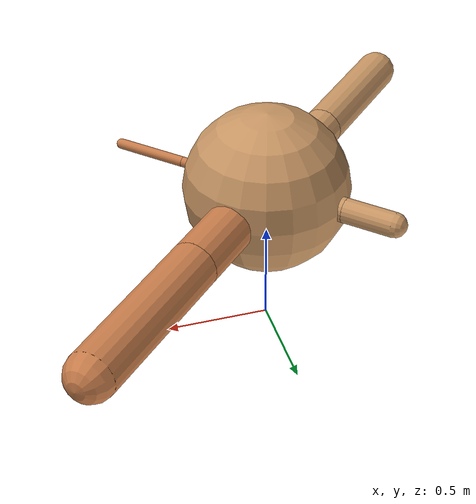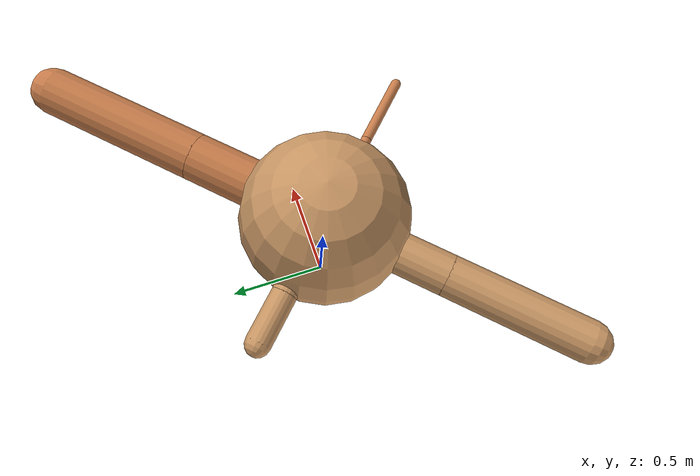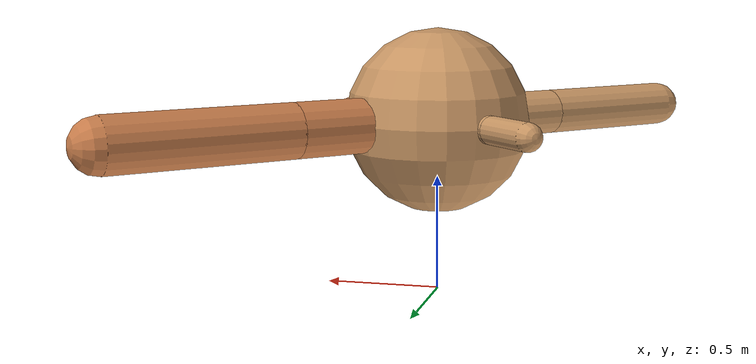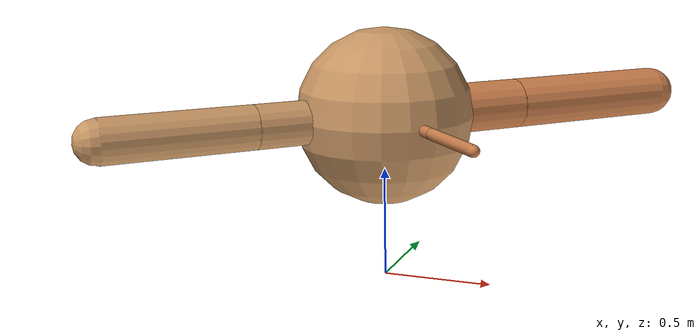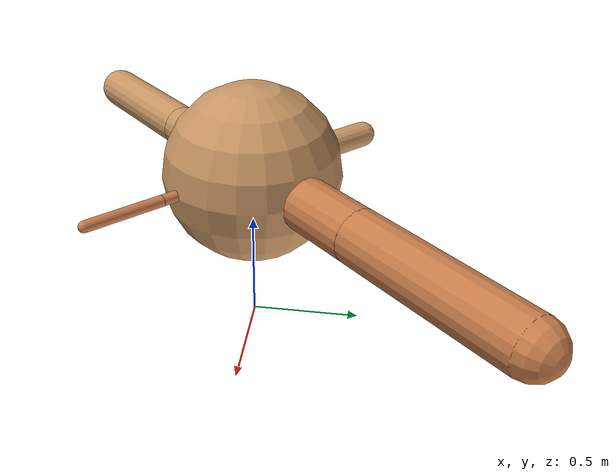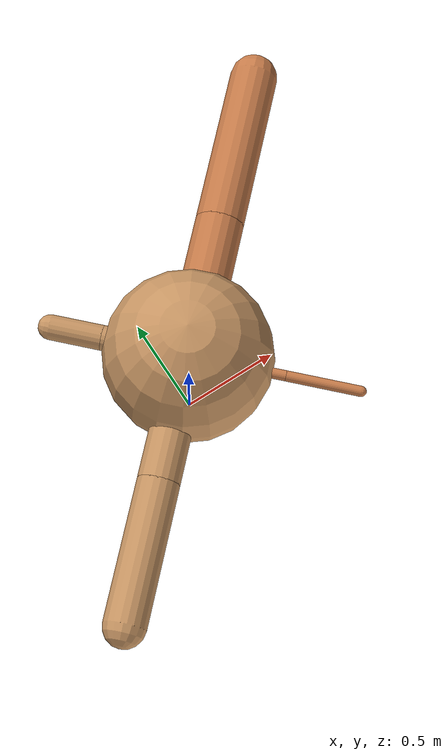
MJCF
<?xml version="1.0" ?>
<mujoco model="ant">

	<compiler angle="degree" coordinate="local" inertiafromgeom="true"/>

	<option integrator="RK4" timestep="0.01"/>

	<custom>

		<numeric data="0.0 0.0 0.55 1.0 0.0 0.0 0.0 0.0 1.0 0.0 -1.0 0.0 -1.0 0.0 1.0" name="init_qpos"/>

	</custom>

	<default>

		<joint armature="1" damping="1" limited="true"/>

		<geom conaffinity="0" condim="3" density="5.0" friction="1.5 0.1 0.1" margin="0.01" rgba="0.8 0.6 0.4 1"/>

	</default>

	<worldbody>

		<body name="torso" pos="0 0 0.75">

			<geom name="torso_geom" pos="0 0 0" size="0.3996975934783642" type="sphere"/>

			<!--joint armature="0" damping="0" limited="false" margin="0.01" name="root" pos="0 0 0" type="free"/-->

			<body name="front_left_leg" pos="0 0 0">

				<geom fromto="0 0 0 0.2 0.2 0" name="aux_1_geom" size="0.11617273427148772" type="capsule" rgba=".8 .5 .3 1"/>

				<body name="aux_1" pos="0.2 0.2 0">

					<joint axis="0 0 1" name="hip_1" pos="0.0 0.0 0.0" range="-40 40" type="hinge"/>

					<geom fromto="0 0 0 0.2852282568502111 0.2852282568502111 0" name="left_leg_geom" size="0.11617273427148772" type="capsule" rgba=".8 .5 .3 1"/>

					<body pos="0.2852282568502111 0.2852282568502111 0" name="front_left_foot">

						<joint axis="-1 1 0" name="ankle_1" pos="0.0 0.0 0.0" range="30 100" type="hinge"/>

						<geom fromto="0 0 0 0.5704565137004222 0.5704565137004222 0" name="left_ankle_geom" size="0.11617273427148772" type="capsule" rgba=".8 .5 .3 1"/>

					</body>

				</body>

			</body>

			<body name="front_right_leg" pos="0 0 0">

				<geom fromto="0 0 0 -0.2 0.2 0" name="aux_2_geom" size="0.059673859772113896" type="capsule"/>

				<body name="aux_2" pos="-0.2 0.2 0">

					<joint axis="0 0 1" name="hip_2" pos="0.0 0.0 0.0" range="-40 40" type="hinge"/>

					<geom fromto="0 0 0 -0.08698204115965723 0.08698204115965723 0" name="right_leg_geom" size="0.059673859772113896" type="capsule"/>

					<body pos="-0.08698204115965723 0.08698204115965723 0" name="front_right_foot">

						<joint axis="1 1 0" name="ankle_2" pos="0.0 0.0 0.0" range="-100 -30" type="hinge"/>

						<geom fromto="0 0 0 -0.17396408231931446 0.17396408231931446 0" name="right_ankle_geom" size="0.059673859772113896" type="capsule"/>

					</body>

				</body>

			</body>

			<body name="left_back_leg" pos="0 0 0">

				<geom fromto="0 0 0 -0.2 -0.2 0" name="aux_3_geom" size="0.09798786572436007" type="capsule"/>

				<body name="aux_3" pos="-0.2 -0.2 0">

					<joint axis="0 0 1" name="hip_3" pos="0.0 0.0 0.0" range="-40 40" type="hinge"/>

					<geom fromto="0 0 0 -0.23012835359321887 -0.23012835359321887 0" name="back_leg_geom" size="0.09798786572436007" type="capsule"/>

					<body pos="-0.23012835359321887 -0.23012835359321887 0" name="left_back_foot">

						<joint axis="-1 1 0" name="ankle_3" pos="0.0 0.0 0.0" range="-100 -30" type="hinge"/>

						<geom fromto="0 0 0 -0.46025670718643774 -0.46025670718643774 0" name="third_ankle_geom" size="0.09798786572436007" type="capsule"/>

					</body>

				</body>

			</body>

			<body name="right_back_leg" pos="0 0 0">

				<geom fromto="0 0 0 0.2 -0.2 0" name="aux_4_geom" size="0.025062995940944334" type="capsule" rgba=".8 .5 .3 1"/>

				<body name="aux_4" pos="0.2 -0.2 0">

					<joint axis="0 0 1" name="hip_4" pos="0.0 0.0 0.0" range="-40 40" type="hinge"/>

					<geom fromto="0 0 0 0.12310000843793643 -0.12310000843793643 0" name="rightback_leg_geom" size="0.025062995940944334" type="capsule" rgba=".8 .5 .3 1"/>

					<body pos="0.12310000843793643 -0.12310000843793643 0" name="right_back_foot">

						<joint axis="1 1 0" name="ankle_4" pos="0.0 0.0 0.0" range="30 100" type="hinge"/>

						<geom fromto="0 0 0 0.24620001687587287 -0.24620001687587287 0" name="fourth_ankle_geom" size="0.025062995940944334" type="capsule" rgba=".8 .5 .3 1"/>

					</body>

				</body>

			</body>

		</body>

	</worldbody>

	<actuator>

		<motor ctrllimited="true" ctrlrange="-1.0 1.0" joint="hip_4" gear="150"/>

		<motor ctrllimited="true" ctrlrange="-1.0 1.0" joint="ankle_4" gear="150"/>

		<motor ctrllimited="true" ctrlrange="-1.0 1.0" joint="hip_1" gear="150"/>

		<motor ctrllimited="true" ctrlrange="-1.0 1.0" joint="ankle_1" gear="150"/>

		<motor ctrllimited="true" ctrlrange="-1.0 1.0" joint="hip_2" gear="150"/>

		<motor ctrllimited="true" ctrlrange="-1.0 1.0" joint="ankle_2" gear="150"/>

		<motor ctrllimited="true" ctrlrange="-1.0 1.0" joint="hip_3" gear="150"/>

		<motor ctrllimited="true" ctrlrange="-1.0 1.0" joint="ankle_3" gear="150"/>

	</actuator>

</mujoco>
